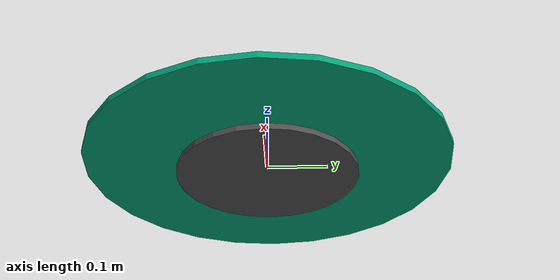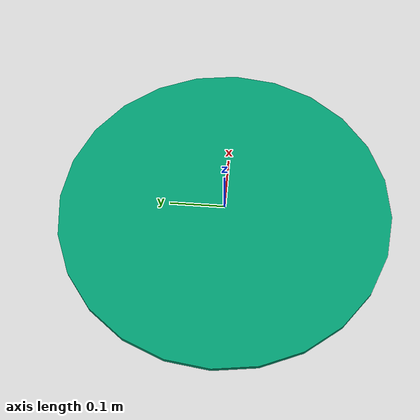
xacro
<?xml version="1.0"?>
<robot name="table" xmlns:xacro="http://ros.org/wiki/xacro">

    <transmission name="base_rotate_trans">
      <type>transmission_interface/SimpleTransmission</type>
      <joint name="base_rotate">
        <hardwareInterface>hardware_interface/VelocityJointInterface</hardwareInterface>
      </joint>
      <actuator name="base_rotate_motor">
        <hardwareInterface>hardware_interface/VelocityJointInterface</hardwareInterface>
        <mechanicalReduction>1</mechanicalReduction>
      </actuator>
    </transmission>

    <xacro:property name="base_radius" value="0.3048" />
    <xacro:property name="total_height" value="0.02" />

    <link name="world"></link>
    <link name="base">
      <visual>
        <origin xyz="0 0 ${-3*total_height/4}" rpy="0 0 0"/>
        <geometry>
          <cylinder length="${total_height/2}" radius="${base_radius/2}"/>
        </geometry>
      </visual>
      <collision>
        <origin xyz="0 0 ${-3*total_height/4}" rpy="0 0 0"/>
        <geometry>
          <cylinder length="${total_height/2}" radius="${base_radius/2}"/>
        </geometry>
      </collision>
      <inertial>
        <mass value="3.0"/>
        <inertia ixx="0.001" ixy="0.0" ixz="0.0" iyy="0.001" iyz="0.0" izz="0.001"/>
      </inertial>
    </link>
    <link name="upper_base">
      <visual>
        <origin xyz="0 0 ${-total_height/4}" rpy="0 0 0"/>
        <geometry>
          <cylinder length="${total_height/2}" radius="${base_radius}"/>
        </geometry>
      </visual>
      <collision>
        <origin xyz="0 0 ${-total_height/4}" rpy="0 0 0"/>
        <geometry>
          <cylinder length="${total_height/2}" radius="${base_radius}"/>
        </geometry>
      </collision>
      <inertial>
        <mass value="3.0"/>
        <inertia ixx="0.18" ixy="0.0" ixz="0.0" iyy="0.18" iyz="0.0" izz="0.18"/>
      </inertial>
    </link>

    <!-- joints -->
    <joint name="base_joint" type="fixed">
      <origin xyz="0 0 0" rpy="0 0 0"/>
      <parent link="world"/>
      <child link="base"/>
    </joint>
    <joint name="base_rotate" type="continuous">
      <origin xyz="0 0 0" rpy="0 0 0"/>
      <parent link="base"/>
      <child link="upper_base"/>
      <axis xyz="0 0 1"/>
      <limit lower="-1.4" upper="1.4" effort="10" velocity="3.67"/>
    </joint>

  <gazebo>
    <plugin name="gazebo_ros_control" filename="libgazebo_ros_control.so">
      <robotSimType>gazebo_ros_control/DefaultRobotHWSim</robotSimType>
    </plugin>
  </gazebo>

  <gazebo reference="base">
    <material>Gazebo/DarkGrey</material>
  </gazebo>
  <gazebo reference="upper_base">
    <material>
      <ambient>.8 .8 .8 1</ambient>
      <diffuse>.8 .8 .8 1</diffuse>
      <specular>.8 .8 .8 1</specular>
      <emissive>0 0 0 0</emissive>
    </material>
    <collision>
      <surface>
        <bounce>
          <restitution_coefficient>0</restitution_coefficient>
          <threshold>1e+06</threshold>
        </bounce>
        <friction>
          <torsional>
            <coefficient>1.0</coefficient>
            <use_patch_radius>true</use_patch_radius>
            <patch_radius>0.1</patch_radius>
            <surface_radius>0.1</surface_radius>
          </torsional>
          <ode>
            <mu>100</mu>
            <mu2>100</mu2>
          </ode>
        </friction>
        <contact>
          <ode>
            <kp>300000</kp>
            <kd>1000</kd>
          </ode>
        </contact>
      </surface>
    </collision>

  </gazebo>

</robot>
